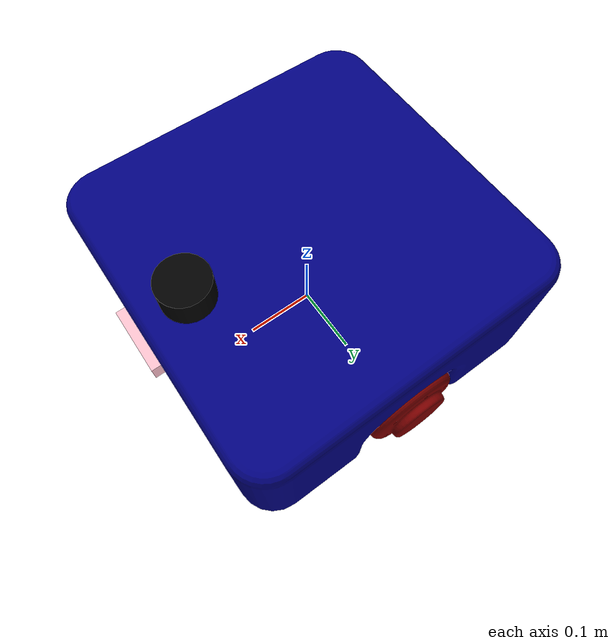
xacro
<?xml version="1.0"?>
<robot name="food_del_robot" xmlns:xacro="http://www.ros.org/wiki/xacro">

    <xacro:include filename="common_properties.xacro"/>
    <xacro:include filename="food_del_robot.xacro"/>

</robot>

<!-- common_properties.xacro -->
<robot xmlns:xacro="http://www.ros.org/wiki/xacro">
    <!-- Materials -->
    <material name="blue">
        <color rgba="0.0 0.0 0.5 1.0"/>
    </material>

    <material name="red">
        <color rgba="0.5 0.0 0.0 1.0"/>
    </material>

    <material name="green">
        <color rgba="0.0 0.5 0.0 1.0"/>
    </material>

    <material name="black">
        <color rgba="0.0 0.0 0.0 1.0"/>
    </material>

    <material name="pink">
        <color rgba="1.0 0.75 0.8 1.0"/>
    </material>

    <material name="gray">
        <color rgba="0.5 0.5 0.5 1"/>
    </material>

    <xacro:macro name="box_inertia" params="m l w h xyz rpy">
        <inertial>
            <origin xyz="${xyz}" rpy="${rpy}"/>
            <mass value="${m}"/>
            <inertia ixx="${(1/12.0) * m * (h*h + l*l)}" ixy="0" ixz="0"
                     iyy="${(1/12.0) * m * (w*w + l*l)}" iyz="0"
                     izz="${(1/12.0) * m * (w*w + h*h)}"/>
        </inertial>
    </xacro:macro>

    <xacro:macro name="cylinder_inertia" params="m r h xyz rpy">
        <inertial>
            <origin xyz="${xyz}" rpy="${rpy}"/>
            <mass value="${m}"/>
            <inertia ixx="${(1/12.0) * m * (3*r*r + h*h)}" ixy="0" ixz="0"
                     iyy="${(1/12.0) * m * (3*r*r + h*h)}" iyz="0"
                     izz="${0.5 * m * r*r}"/>
        </inertial>
    </xacro:macro>

    <xacro:macro name="sphere_inertia" params="m r xyz rpy">
        <inertial>
            <origin xyz="${xyz}" rpy="${rpy}"/>
            <mass value="${m}"/>
            <inertia ixx="${(2/5.0) * m * r*r}" ixy="0" ixz="0"
                     iyy="${(2/5.0) * m * r*r}" iyz="0"
                     izz="${(2/5.0) * m * r*r}"/>
        </inertial>
    </xacro:macro>

</robot>

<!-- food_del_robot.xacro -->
<robot name="food_del_robot" xmlns:xacro="http://www.ros.org/wiki/xacro">

    <!-- Xacro parameters -->
    <xacro:property name="base_length" value="0.48"/>
    <xacro:property name="base_height" value="0.2"/>
    <xacro:property name="base_width" value="0.48"/>
    <xacro:property name="base_height_from_ground" value="0.01"/>
    <xacro:property name="base_to_wheel_center" value="0.0555"/>
    <xacro:property name="distance_between_two_wheels" value="0.45"/>
    <xacro:property name="wheel_radius" value="0.065"/>
    <xacro:property name="wheel_length" value="0.04"/>
    <xacro:property name="rotate_90" value="1.57"/>
    <xacro:property name ="lidar_length" value = "0.043"/>
    <xacro:property name ="lidar_radius" value = "0.035"/>
    <xacro:property name ="lidar_shift_from_center" value = "0.172"/>
    <xacro:property name="imu_length" value="0.031"/>
    <xacro:property name="imu_height" value="0.016"/>
    <xacro:property name="imu_width" value="0.025"/>
    <xacro:property name="imu_height_from_ground" value="0.110"/>
    <xacro:property name="camera_length" value="0.025"/>
    <xacro:property name="camera_height" value="0.025"/>
    <xacro:property name="camera_width" value="0.09"/>
    <xacro:property name="camera_height_from_ground" value="0.150"/>

    <!-- Wheel macro -->
    <xacro:macro name="wheel_link" params="prefix">
        <link name="${prefix}_wheel_link">
            <visual>
                <geometry>
                    <mesh filename="file:///home/panha/Food_Delivery_Robot/src/food_del_robot_description/urdf/Real_Robot/${prefix}_wheel_link.STL"
                          scale="1 1 1"/>
                </geometry>
                <!-- Rotate wheel mesh to roll correctly along Y axis -->
                <origin xyz="0.0 0.0 0.0" rpy="0.0 0.0 0.0"/>
                <material name="red"/>
            </visual>
            <collision>
                <geometry>
                    <sphere radius="${wheel_radius}"/>
                </geometry>
                <origin xyz="0.0 0.0 0.0" rpy="0.0 0.0 0.0"/>
            </collision>
            <xacro:cylinder_inertia
                m="1.0"
                r="${wheel_radius}"
                l="${wheel_length}"
                o_xyz="0.0 0.0 0.0"
                o_rpy="0.0 ${rotate_90} 0.0"/>
        </link>
    </xacro:macro>

    <!-- Instantiate wheels -->
    <xacro:wheel_link prefix="right"/>
    <xacro:wheel_link prefix="left"/>

    <!-- Base footprint -->
    <link name="base_footprint"/>

    <!-- Base links -->
    <link name="base_link">
        <visual>
            <geometry>
                <mesh filename="file:///home/panha/Food_Delivery_Robot/src/food_del_robot_description/urdf/Real_Robot/base_link.STL"
                    scale="1 1 1"/>
            </geometry>
            <origin xyz="0.0 0.0 0.1" rpy="0.0 0.0 1.57"/>
            <material name="blue"/>
        </visual>
        <collision>
            <geometry>
                <box size="${base_length} ${base_width} ${base_height}"/>
            </geometry>
            <origin xyz="0.0 0.0 ${base_height / 2.0}" rpy="0.0 0.0 0.0"/>
        </collision>
        <xacro:box_inertia
            m="5.0"
            x="${base_length}"
            y="${base_width}"
            z="${base_height}"
            o_xyz="0.0 0.0 ${base_height / 2.0}"
            o_rpy="0.0 0.0 0.0"/>
    </link>

    <!-- Base scan link -->
    <link name="laser_link">
        <visual>
            <geometry>
                <cylinder radius="${lidar_radius}" length="${lidar_length}"/>
            </geometry>
            <origin xyz="0.0 0.0 0.0" rpy="0.0 0.0 0.0"/>
            <material name="black"/>
        </visual>
        <collision>
            <geometry>
                <cylinder radius="${lidar_radius}" length="${lidar_length}"/>
            </geometry>
            <origin xyz="0.0 0.0 0.0" rpy="0.0 0.0 0.0"/>
        </collision>
        <xacro:cylinder_inertia
            m="0.2"
            r="${lidar_radius}"
            l="${lidar_length}"
            o_xyz="0.0 0.0 0.0"
            o_rpy="0.0 0.0 0.0"/>
    </link>

    <!-- IMU link -->
    <link name="imu_link">
        <visual>
            <geometry>
                <box size="${imu_length} ${imu_width} ${imu_height}"/>
            </geometry>
            <origin xyz="0.0 0.0 ${imu_height / 2.0}" rpy="0.0 0.0 0.0"/>
            <material name="blue"/>
        </visual>
        <collision>
            <geometry>
                <box size="${imu_length} ${imu_width} ${imu_height}"/>
            </geometry>
            <origin xyz="0.0 0.0 ${imu_height / 2.0}" rpy="0.0 0.0 0.0"/>
        </collision>
        <xacro:box_inertia
            m="5.0"
            x="${imu_length}"
            y="${imu_width}"
            z="${imu_height}"
            o_xyz="0.0 0.0 ${imu_height / 2.0}"
            o_rpy="0.0 0.0 0.0"/>
    </link>

    <!-- Camera link -->
    <link name="camera_link">
        <visual>
            <geometry>
                <box size="${camera_length} ${camera_width} ${camera_height}"/>
            </geometry>
            <origin xyz="0.0 0.0 ${camera_height / 2.0}" rpy="0.0 0.0 0.0"/>
            <material name="pink"/>
        </visual>
        <collision>
            <geometry>
                <box size="${camera_length} ${camera_width} ${camera_height}"/>
            </geometry>
            <origin xyz="0.0 0.0 ${camera_height / 2.0}" rpy="0.0 0.0 0.0"/>
        </collision>
        <xacro:box_inertia
            m="0.5"
            x="${camera_length}"
            y="${camera_width}"
            z="${camera_height}"
            o_xyz="0.0 0.0 ${camera_height / 2.0}"
            o_rpy="0.0 0.0 0.0"/>
    </link>

    <!-- base footprint - base link joint -->
    <joint name="base_footprint_base_link_joint" type="fixed">
        <origin xyz="0.0 0.0 ${base_height_from_ground}" rpy="0.0 0.0 0.0"/>
        <parent link="base_footprint"/>
        <child link="base_link"/>
    </joint>

    <!-- base link - right wheel link joint -->
    <joint name="base_left_wheel_joint" type="continuous">
        <origin xyz="0.0 ${distance_between_two_wheels/2} ${base_to_wheel_center}" rpy="0.0 0.0 0.0"/>
        <parent link="base_link"/>
        <child link="left_wheel_link"/>
        <axis xyz="0.0 1.0 0.0"/>
    </joint>

    <!-- base link - left wheel link joint -->
    <joint name="base_right_wheel_joint" type="continuous">
        <origin xyz="0.0 ${-distance_between_two_wheels/2} ${base_to_wheel_center}" rpy="0.0 0.0 0.0"/>
        <parent link="base_link"/>
        <child link="right_wheel_link"/>
        <axis xyz="0.0 1.0 0.0"/>
    </joint>

    <!-- base link - base scan link joint -->
    <joint name="laser_base_link_joint" type="fixed">
        <origin xyz="${lidar_shift_from_center} 0.0 ${base_height + (lidar_length/2)}" rpy="0.0 0.0 0.0"/>
        <parent link="base_link"/>
        <child link="laser_link"/>
    </joint>

    <!-- base link - imu link joint -->
    <joint name="base_imu_joint" type="fixed">
        <origin xyz="0.0 0.0 ${imu_height_from_ground}" rpy="0.0 0.0 0.0"/>
        <parent link="base_link"/>
        <child link="imu_link"/>
    </joint>

    <!-- base link - camera link joint -->
    <joint name="base_camera_joint" type="fixed">
        <origin xyz="${base_length/2.0} 0.0 ${camera_height_from_ground}" rpy="0.0 0.0 0.0"/>
        <parent link="base_link"/>
        <child link="camera_link"/>
    </joint>

</robot>
